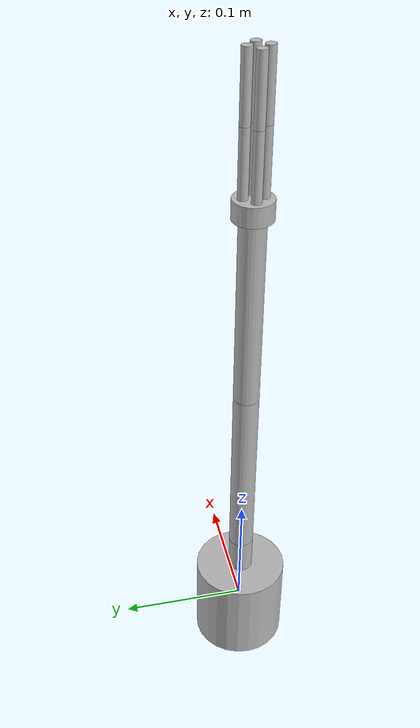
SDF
<?xml version="1.0" ?>
<sdf version="1.6">
	<model name="robot">
		<link name="arm_base">
			<pose>0 0 0 0 0 0</pose>
			<inertial>
				<inertia>
					<ixx>0.00820312</ixx>
					<iyy>0.00820312</iyy>
					<izz>0.00703125</izz>
				</inertia>
				<mass>10.00000000</mass>
			</inertial>
			<visual name="arm_base_vis">
				<geometry>
					<cylinder>
						<radius>0.0375</radius>
						<length>0.075</length>
					</cylinder>
				</geometry>
			</visual>
			<collision name="arm_base_col">
				<geometry>
					<cylinder>
						<radius>0.0375</radius>
						<length>0.075</length>
					</cylinder>
				</geometry>
			</collision>
		</link>
		<link name="arm_base_top">
			<pose>0 0 0.0525 0 0 0</pose>
			<inertial>
				<inertia>
					<ixx>0.00005000</ixx>
					<iyy>0.00005000</iyy>
					<izz>0.00002500</izz>
				</inertia>
				<mass>0.50000000</mass>
			</inertial>
			<visual name="arm_base_top_vis">
				<geometry>
					<cylinder>
						<radius>0.01</radius>
						<length>0.03</length>
					</cylinder>
				</geometry>
			</visual>
			<collision name="arm_base_top_col">
				<geometry>
					<cylinder>
						<radius>0.01</radius>
						<length>0.03</length>
					</cylinder>
				</geometry>
			</collision>
		</link>
		 <joint name="fixed" type="fixed">
			<child>arm_base</child>
			<parent>world</parent>
		</joint>
		<joint name="armBase_armBaseTop" type="fixed">
			<child>arm_base_top</child>
			<parent>arm_base</parent>
		</joint>

		<link name="arm1">
			<pose>0 0 0.14250000000000002 0 0 0</pose>
			<inertial>
				<inertia>
					<ixx>0.00190000</ixx>
					<iyy>0.00190000</iyy>
					<izz>0.00005000</izz>
				</inertia>
				<mass>1.00000000</mass>
			</inertial>
			<visual name="arm1_vis">
				<geometry>
					<cylinder>
						<radius>0.01</radius>
						<length>0.15</length>
					</cylinder>
				</geometry>
			</visual>
			<collision name="arm1_col">
				<geometry>
					<cylinder>
						<radius>0.01</radius>
						<length>0.15</length>
					</cylinder>
				</geometry>
			</collision>
		</link>
		<joint name="armBaseTop_arm1" type="fixed">
			<child>arm1</child>
			<parent>arm_base_top</parent>
		</joint>
		<link name="arm2">
			<pose>0 0 0.29250000000000004 0 0 0</pose>
			<inertial>
				<inertia>
					<ixx>0.00190000</ixx>
					<iyy>0.00190000</iyy>
					<izz>0.00005000</izz>
				</inertia>
				<mass>1.00000000</mass>
			</inertial>
			<visual name="arm2_vis">
				<geometry>
					<cylinder>
						<radius>0.01</radius>
						<length>0.15</length>
					</cylinder>
				</geometry>
			</visual>
			<collision name="arm2_col">
				<geometry>
					<cylinder>
						<radius>0.01</radius>
						<length>0.15</length>
					</cylinder>
				</geometry>
			</collision>
		</link>
		<joint name="arm1_arm2" type="fixed">
			<child>arm2</child>
			<parent>arm1</parent>
		</joint>
		<link name="palm">
			<pose>0 0 0.37500000000000006 0 0 0</pose>
			<inertial>
				<inertia>
					<ixx>0.00002500</ixx>
					<iyy>0.00002500</iyy>
					<izz>0.00003750</izz>
				</inertia>
				<mass>0.33333333</mass>
			</inertial>
			<visual name="palm_vis">
				<geometry>
					<cylinder>
						<radius>0.015</radius>
						<length>0.015</length>
					</cylinder>
				</geometry>
			</visual>
			<collision name="palm_col">
				<geometry>
					<cylinder>
						<radius>0.015</radius>
						<length>0.015</length>
					</cylinder>
				</geometry>
			</collision>
		</link>
		<joint name="palm_joint" type="fixed">
			<child>palm</child>
			<parent>arm2</parent>
		</joint>

		<link name="finger_one">
			<pose>0 0.0075 0.4075000000000001 0 0 0</pose>
			<inertial>
				<inertia>
					<ixx>0.00005296</ixx>
					<iyy>0.00005296</iyy>
					<izz>0.00000176</izz>
				</inertia>
				<mass>0.25000000</mass>
			</inertial>
			<visual name="finger_one_vis">
				<geometry>
					<cylinder>
						<radius>0.00375</radius>
						<length>0.049999999999999996</length>
					</cylinder>
				</geometry>
			</visual>
			<collision name="finger_one_col">
				<geometry>
					<cylinder>
						<radius>0.00375</radius>
						<length>0.049999999999999996</length>
					</cylinder>
				</geometry>
			</collision>
		</link>
		<joint name="finger_one_joint" type="revolute">
			<pose>0 0 -0.024999999999999998 0 0 0</pose>
			<child>finger_one</child>
			<parent>palm</parent>
			<axis>
				<xyz>1 0 0</xyz>
				<dynamics>
					<friction>0.05</friction>
					<damping>0.03</damping>
				</dynamics>
				<limit>
					<upper>0</upper>
					<lower>0.7853981633974483</lower>
				</limit>
			</axis>
		</joint>
		<link name="finger_two">
			<pose>0 -0.0075 0.4075000000000001 0 0 0</pose>
			<inertial>
				<inertia>
					<ixx>0.00005296</ixx>
					<iyy>0.00005296</iyy>
					<izz>0.00000176</izz>
				</inertia>
				<mass>0.25000000</mass>
			</inertial>
			<visual name="finger_two_vis">
				<geometry>
					<cylinder>
						<radius>0.00375</radius>
						<length>0.049999999999999996</length>
					</cylinder>
				</geometry>
			</visual>
			<collision name="finger_two_col">
				<geometry>
					<cylinder>
						<radius>0.00375</radius>
						<length>0.049999999999999996</length>
					</cylinder>
				</geometry>
			</collision>
		</link>
		<joint name="finger_two_joint" type="revolute">
			<pose>0 0 -0.024999999999999998 0 0 0</pose>
			<child>finger_two</child>
			<parent>palm</parent>
			<axis>
				<xyz>1 0 0</xyz>
				<dynamics>
					<friction>0.05</friction>
					<damping>0.03</damping>
				</dynamics>
				<limit>
					<upper>-0.7853981633974483</upper>
					<lower>0</lower>
				</limit>
			</axis>
		</joint>
		<link name="finger_three">
			<pose>0.0075 0 0.4075000000000001 0 0 0</pose>
			<inertial>
				<inertia>
					<ixx>0.00005296</ixx>
					<iyy>0.00005296</iyy>
					<izz>0.00000176</izz>
				</inertia>
				<mass>0.25000000</mass>
			</inertial>
			<visual name="finger_three_vis">
				<geometry>
					<cylinder>
						<radius>0.00375</radius>
						<length>0.049999999999999996</length>
					</cylinder>
				</geometry>
			</visual>
			<collision name="finger_three_col">
				<geometry>
					<cylinder>
						<radius>0.00375</radius>
						<length>0.049999999999999996</length>
					</cylinder>
				</geometry>
			</collision>
		</link>
		<joint name="finger_three_joint" type="revolute">
			<pose>0 0 -0.024999999999999998 0 0 0</pose>
			<child>finger_three</child>
			<parent>palm</parent>
			<axis>
				<xyz>0 1 0</xyz>
				<dynamics>
					<friction>0.05</friction>
					<damping>0.03</damping>
				</dynamics>
				<limit>
					<upper>0.7853981633974483</upper>
					<lower>0</lower>
				</limit>
			</axis>
		</joint>
		<link name="finger_four">
			<pose>-0.0075 0 0.4075000000000001 0 0 0</pose>
			<inertial>
				<inertia>
					<ixx>0.00005296</ixx>
					<iyy>0.00005296</iyy>
					<izz>0.00000176</izz>
				</inertia>
				<mass>0.25000000</mass>
			</inertial>
			<visual name="finger_four_vis">
				<geometry>
					<cylinder>
						<radius>0.00375</radius>
						<length>0.049999999999999996</length>
					</cylinder>
				</geometry>
			</visual>
			<collision name="finger_four_col">
				<geometry>
					<cylinder>
						<radius>0.00375</radius>
						<length>0.049999999999999996</length>
					</cylinder>
				</geometry>
			</collision>
		</link>
		<joint name="finger_four_joint" type="revolute">
			<pose>0 0 -0.024999999999999998 0 0 0</pose>
			<child>finger_four</child>
			<parent>palm</parent>
			<axis>
				<xyz>0 1 0</xyz>
				<dynamics>
					<friction>0.05</friction>
					<damping>0.03</damping>
				</dynamics>
				<limit>
					<upper>0</upper>
					<lower>-0.7853981633974483</lower>
				</limit>
			</axis>
		</joint>
		<link name="finger_one_tip">
			<pose>0 0.0075 0.4575000000000001 0 0 0</pose>
			<inertial>
				<inertia>
					<ixx>0.00005296</ixx>
					<iyy>0.00005296</iyy>
					<izz>0.00000176</izz>
				</inertia>
				<mass>0.25000000</mass>
			</inertial>
			<visual name="finger_one_tip_vis">
				<geometry>
					<cylinder>
						<radius>0.00375</radius>
						<length>0.049999999999999996</length>
					</cylinder>
				</geometry>
			</visual>
			<collision name="finger_one_tip_col">
				<geometry>
					<cylinder>
						<radius>0.00375</radius>
						<length>0.049999999999999996</length>
					</cylinder>
				</geometry>
			</collision>
			<sensor name="finger_one_tip_sensor" type="contact">
				<contact>
					<collision>finger_one_tip_col</collision>
				</contact>
				<always_on>1</always_on>
				<update_rate>30</update_rate>
				<visualize>true</visualize>
				<plugin filename="libcontact_plugin.so" name="my_plugin"/>
			</sensor>
		</link>
		<joint name="finger_one_tip_joint" type="revolute">
			<pose>0 0 -0.024999999999999998 0 0 0</pose>
			<child>finger_one_tip</child>
			<parent>finger_one</parent>
			<axis>
				<xyz>1 0 0</xyz>
				<dynamics>
					<friction>0.05</friction>
					<damping>0.03</damping>
				</dynamics>
				<limit>
					<upper>-1.5707963267948966</upper>
					<lower>0</lower>
				</limit>
			</axis>
		</joint>
		<link name="finger_two_tip">
			<pose>0 -0.0075 0.4575000000000001 0 0 0</pose>
			<inertial>
				<inertia>
					<ixx>0.00005296</ixx>
					<iyy>0.00005296</iyy>
					<izz>0.00000176</izz>
				</inertia>
				<mass>0.25000000</mass>
			</inertial>
			<visual name="finger_two_tip_vis">
				<geometry>
					<cylinder>
						<radius>0.00375</radius>
						<length>0.049999999999999996</length>
					</cylinder>
				</geometry>
			</visual>
			<collision name="finger_two_tip_col">
				<geometry>
					<cylinder>
						<radius>0.00375</radius>
						<length>0.049999999999999996</length>
					</cylinder>
				</geometry>
			</collision>
			<sensor name="finger_two_tip_sensor" type="contact">
				<contact>
					<collision>finger_two_tip_col</collision>
				</contact>
				<always_on>1</always_on>
				<update_rate>30</update_rate>
				<visualize>true</visualize>
				<plugin filename="libcontact_plugin.so" name="my_plugin"/>
			</sensor>
		</link>
		<joint name="finger_two_tip_joint" type="revolute">
			<pose>0 0 -0.024999999999999998 0 0 0</pose>
			<child>finger_two_tip</child>
			<parent>finger_two</parent>
			<axis>
				<xyz>1 0 0</xyz>
				<dynamics>
					<friction>0.05</friction>
					<damping>0.03</damping>
				</dynamics>
				<limit>
					<upper>0</upper>
					<lower>1.5707963267948966</lower>
				</limit>
			</axis>
		</joint>
		<link name="finger_three_tip">
			<pose>0.0075 0 0.4575000000000001 0 0 0</pose>
			<inertial>
				<inertia>
					<ixx>0.00005296</ixx>
					<iyy>0.00005296</iyy>
					<izz>0.00000176</izz>
				</inertia>
				<mass>0.25000000</mass>
			</inertial>
			<visual name="finger_three_tip_vis">
				<geometry>
					<cylinder>
						<radius>0.00375</radius>
						<length>0.049999999999999996</length>
					</cylinder>
				</geometry>
			</visual>
			<collision name="finger_three_tip_col">
				<geometry>
					<cylinder>
						<radius>0.00375</radius>
						<length>0.049999999999999996</length>
					</cylinder>
				</geometry>
			</collision>
			<sensor name="finger_three_tip_sensor" type="contact">
				<contact>
					<collision>finger_three_tip_col</collision>
				</contact>
				<always_on>1</always_on>
				<update_rate>30</update_rate>
				<visualize>true</visualize>
				<plugin filename="libcontact_plugin.so" name="my_plugin"/>
			</sensor>
		</link>
		<joint name="finger_three_tip_joint" type="revolute">
			<pose>0 0 -0.024999999999999998 0 0 0</pose>
			<child>finger_three_tip</child>
			<parent>finger_three</parent>
			<axis>
				<xyz>0 1 0</xyz>
				<dynamics>
					<friction>0.05</friction>
					<damping>0.03</damping>
				</dynamics>
				<limit>
					<upper>0</upper>
					<lower>-1.5707963267948966</lower>
				</limit>
			</axis>
		</joint>
		<link name="finger_four_tip">
			<pose>-0.0075 0 0.4575000000000001 0 0 0</pose>
			<inertial>
				<inertia>
					<ixx>0.00005296</ixx>
					<iyy>0.00005296</iyy>
					<izz>0.00000176</izz>
				</inertia>
				<mass>0.25000000</mass>
			</inertial>
			<visual name="finger_four_tip_vis">
				<geometry>
					<cylinder>
						<radius>0.00375</radius>
						<length>0.049999999999999996</length>
					</cylinder>
				</geometry>
			</visual>
			<collision name="finger_four_tip_col">
				<geometry>
					<cylinder>
						<radius>0.00375</radius>
						<length>0.049999999999999996</length>
					</cylinder>
				</geometry>
			</collision>
			<sensor name="finger_four_tip_sensor" type="contact">
				<contact>
					<collision>finger_four_tip_col</collision>
				</contact>
				<always_on>1</always_on>
				<update_rate>30</update_rate>
				<visualize>true</visualize>
				<plugin filename="libcontact_plugin.so" name="my_plugin"/>
			</sensor>
		</link>
		<joint name="finger_four_tip_joint" type="revolute">
			<pose>0 0 -0.024999999999999998 0 0 0</pose>
			<child>finger_four_tip</child>
			<parent>finger_four</parent>
			<axis>
				<xyz>0 1 0</xyz>
				<dynamics>
					<friction>0.05</friction>
					<damping>0.03</damping>
				</dynamics>
				<limit>
					<upper>1.5707963267948966</upper>
					<lower>0</lower>
				</limit>
			</axis>
		</joint>
		<plugin filename="libgripper_plugin.so" name="gripper_plugin"/>
		<plugin filename="libarm_controller.so" name="arm_controller"/>
	</model>
</sdf>
